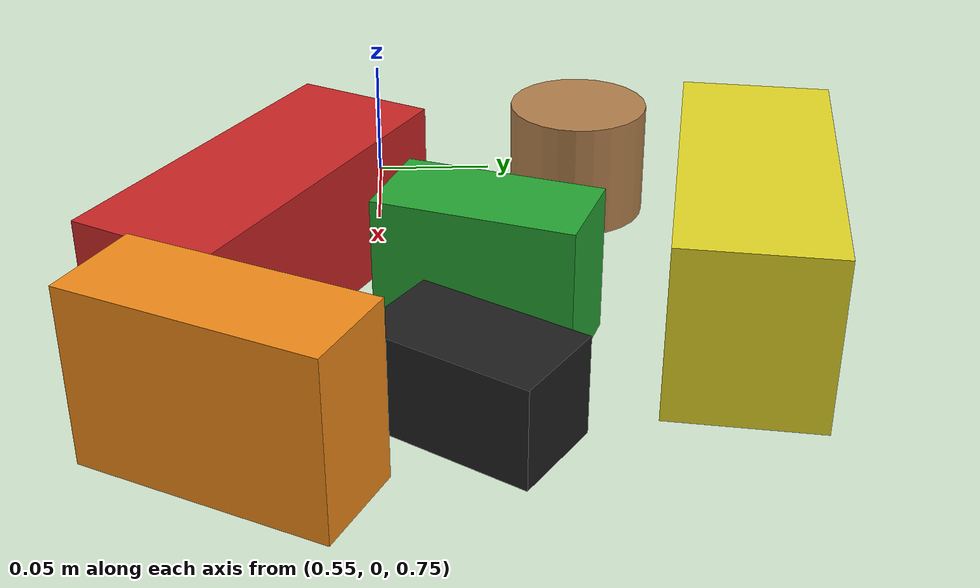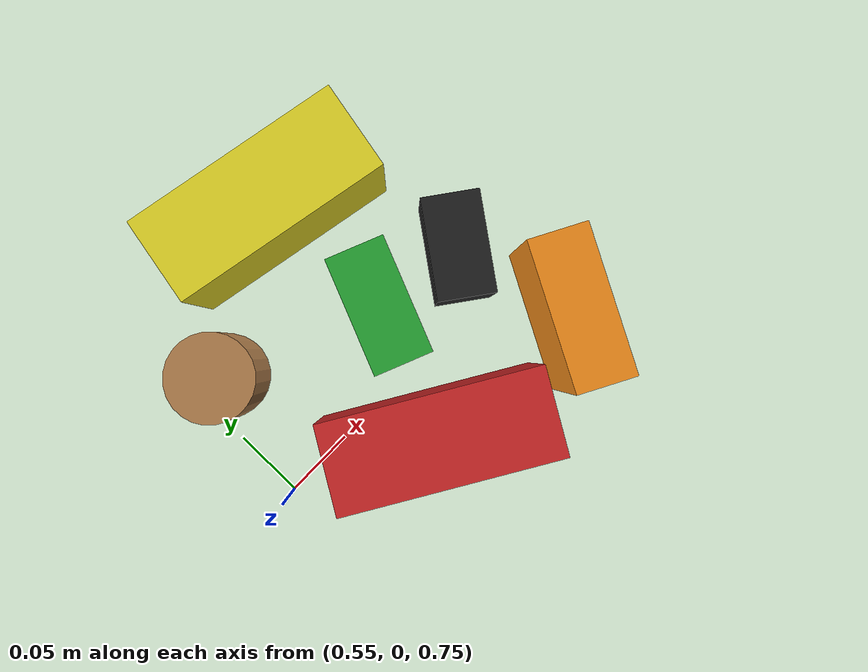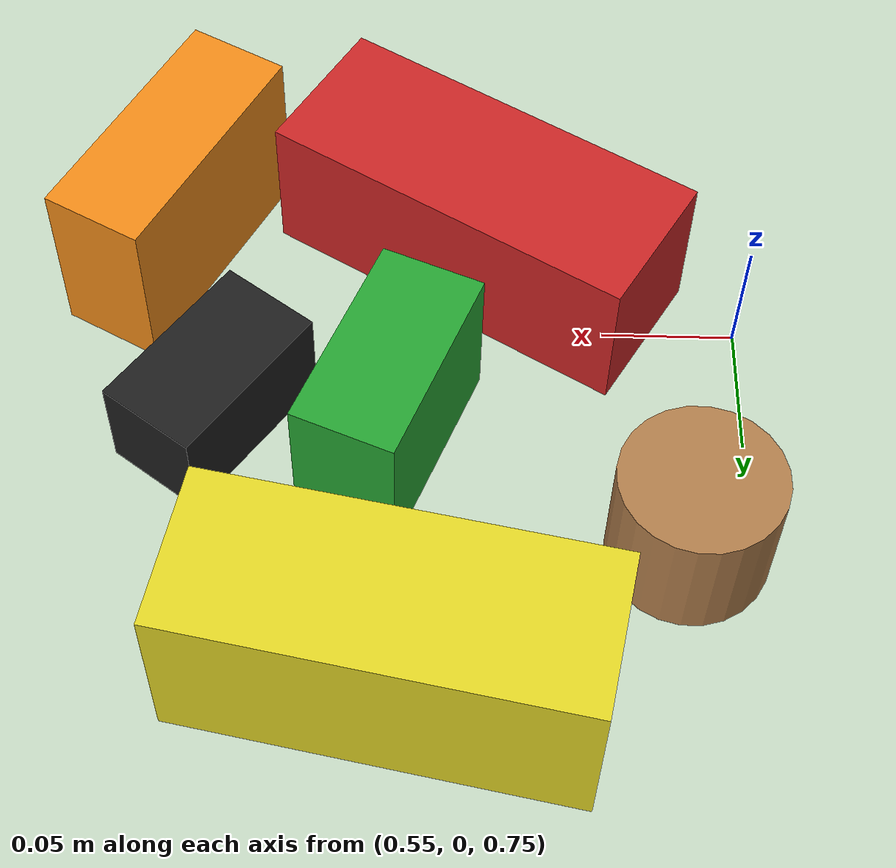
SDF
<sdf version="1.4">
 <world name="default">
  <light name="sun" type="directional">
   <pose>0 0 10 0 -0 0</pose>
   <diffuse>0.8 0.8 0.8 1</diffuse>
   <specular>0.2 0.2 0.2 1</specular>
   <attenuation>
    <range>1000</range>
    <constant>0.9</constant>
    <linear>0.01</linear>
    <quadratic>0.001</quadratic>
   </attenuation>
   <direction>-0.5 0.1 -0.9</direction>
  </light>
  <scene><shadows>0</shadows><ambient>0.4 0.4 0.4 1</ambient><background>0.7 0.7 0.7 1</background></scene>
  <model name="ground_plane">
   <static>1</static>
   <link name="link">
    <collision name="collision">
     <geometry><plane><normal>0 0 1</normal><size>100 100</size></plane></geometry>
     <surface><friction><ode><mu>100</mu><mu2>50</mu2></ode></friction></surface>
    </collision>
    <visual name="visual">
     <cast_shadows>0</cast_shadows>
     <geometry><plane><normal>0 0 1</normal><size>100 100</size></plane></geometry>
     <material>
      <script><uri>file://media/materials/scripts/gazebo.material</uri><name>Gazebo/Grey</name></script>
     </material>
    </visual>
    <velocity_decay><linear>0</linear><angular>0</angular></velocity_decay>
   </link>
  </model>
  <physics type="ode">
   <max_step_size>0.001</max_step_size>
   <real_time_factor>1</real_time_factor>
   <real_time_update_rate>1000</real_time_update_rate>
   <gravity>0 0 -9.8</gravity>
  </physics>
  <spherical_coordinates>
   <surface_model>EARTH_WGS84</surface_model>
   <latitude_deg>0</latitude_deg>
   <longitude_deg>0</longitude_deg>
   <elevation>0</elevation>
   <heading_deg>0</heading_deg>
  </spherical_coordinates>
  <model name="wood_cylinder_5x2cm">
   <link name="link">
    <pose>0 0 0.05 0 -0 0</pose>
    <inertial>
     <mass>0.001</mass>
     <inertia>
      <ixx>0.000101167</ixx>
      <ixy>0</ixy>
      <ixz>0</ixz>
      <iyy>6.1167e-05</iyy>
      <iyz>0</iyz>
      <izz>6.1167e-05</izz>
     </inertia>
    </inertial>
    <collision name="collision">
     <geometry><cylinder><radius>0.03</radius><length>0.05</length></cylinder></geometry>
     <surface><contact><ode><max_vel>0.1</max_vel><min_depth>0.001</min_depth></ode></contact></surface>
    </collision>
    <visual name="visual">
     <geometry><cylinder><radius>0.03</radius><length>0.05</length></cylinder></geometry>
     <material>
      <script><uri>file://media/materials/scripts/gazebo.material</uri><name>Gazebo/Wood</name></script>
     </material>
    </visual>
    <velocity_decay><linear>0</linear><angular>0</angular></velocity_decay>
   </link>
   <pose>0.571736 0.089544 0.714789 -0.004557 0.000387 3.01316</pose>
   <static>0</static>
  </model>
  <model name="rectangle_green">
   <link name="link">
    <pose>0 0 0.05 0 -0 0</pose>
    <inertial>
     <mass>0.001</mass>
     <inertia>
      <ixx>0.000101167</ixx>
      <ixy>0</ixy>
      <ixz>0</ixz>
      <iyy>6.1167e-05</iyy>
      <iyz>0</iyz>
      <izz>6.1167e-05</izz>
     </inertia>
    </inertial>
    <collision name="collision">
     <geometry><box><size>0.06 0.08 0.04</size></box></geometry>
     <surface><contact><ode><max_vel>0.1</max_vel><min_depth>0.001</min_depth></ode></contact></surface>
    </collision>
    <visual name="visual">
     <geometry><box><size>0.06 0.08 0.04</size></box></geometry>
     <material>
      <script><uri>file://media/materials/scripts/gazebo.material</uri><name>Gazebo/Green</name></script>
     </material>
    </visual>
    <velocity_decay><linear>0</linear><angular>0</angular></velocity_decay>
   </link>
   <pose>0.726768 0.02462 0.769386 0.722479 -1.56834 -1.11425</pose>
   <static>0</static>
  </model>
  <model name="rectangle_orange">
   <link name="link">
    <pose>0 0 0.05 0 -0 0</pose>
    <inertial>
     <mass>0.001</mass>
     <inertia>
      <ixx>0.000101167</ixx>
      <ixy>0</ixy>
      <ixz>0</ixz>
      <iyy>6.1167e-05</iyy>
      <iyz>0</iyz>
      <izz>6.1167e-05</izz>
     </inertia>
    </inertial>
    <collision name="collision">
     <geometry><box><size>0.07 0.1 0.04</size></box></geometry>
     <surface><contact><ode><max_vel>0.1</max_vel><min_depth>0.001</min_depth></ode></contact></surface>
    </collision>
    <visual name="visual">
     <geometry><box><size>0.07 0.1 0.04</size></box></geometry>
     <material>
      <script><uri>file://media/materials/scripts/gazebo.material</uri><name>Gazebo/Orange</name></script>
     </material>
    </visual>
    <velocity_decay><linear>0</linear><angular>0</angular></velocity_decay>
   </link>
   <pose>0.810688 -0.071013 0.774852 2.63935 -1.56787 -3.13254</pose>
   <static>0</static>
  </model>
  <model name="rectangle_black">
   <link name="link">
    <pose>0 0 0.05 0 -0 0</pose>
    <inertial>
     <mass>0.001</mass>
     <inertia>
      <ixx>0.000101167</ixx>
      <ixy>0</ixy>
      <ixz>0</ixz>
      <iyy>6.1167e-05</iyy>
      <iyz>0</iyz>
      <izz>6.1167e-05</izz>
     </inertia>
    </inertial>
    <collision name="collision">
     <geometry><box><size>0.04 0.04 0.07</size></box></geometry>
     <surface><contact><ode><max_vel>0.1</max_vel><min_depth>0.001</min_depth></ode></contact></surface>
    </collision>
    <visual name="visual">
     <geometry><box><size>0.04 0.04 0.07</size></box></geometry>
     <material>
      <script><uri>file://media/materials/scripts/gazebo.material</uri><name>Gazebo/Black</name></script>
     </material>
    </visual>
    <velocity_decay><linear>0</linear><angular>0</angular></velocity_decay>
   </link>
   <pose>0.775767 0.075606 0.759981 -0.152297 -1.57065 1.09155</pose>
   <static>0</static>
  </model>
  <model name="wood_rectangle">
   <link name="link">
    <pose>0 0 0.05 0 -0 0</pose>
    <inertial>
     <mass>0.01</mass>
     <inertia>
      <ixx>0.000101167</ixx>
      <ixy>0</ixy>
      <ixz>0</ixz>
      <iyy>6.1167e-05</iyy>
      <iyz>0</iyz>
      <izz>6.1167e-05</izz>
     </inertia>
    </inertial>
    <collision name="collision">
     <geometry><box><size>0.06 0.15 0.06</size></box></geometry>
     <surface><contact><ode><max_vel>0.1</max_vel><min_depth>0.001</min_depth></ode></contact></surface>
    </collision>
    <visual name="visual">
     <geometry><box><size>0.06 0.15 0.06</size></box></geometry>
     <material>
      <script><uri>file://media/materials/scripts/gazebo.material</uri><name>Gazebo/Red</name></script>
     </material>
    </visual>
    <velocity_decay><linear>0</linear><angular>0</angular></velocity_decay>
   </link>
   <pose>0.647238 -0.043529 0.719986 -0.000151 -9e-05 -2.11396</pose>
   <static>0</static>
  </model>
  <model name="wood_cube_10cm">
   <link name="link">
    <pose>0 0 0.05 0 -0 0</pose>
    <inertial>
     <mass>0.01</mass>
     <inertia>
      <ixx>0.000101167</ixx>
      <ixy>0</ixy>
      <ixz>0</ixz>
      <iyy>6.1167e-05</iyy>
      <iyz>0</iyz>
      <izz>6.1167e-05</izz>
     </inertia>
    </inertial>
    <collision name="collision">
     <geometry><box><size>0.06 0.15 0.07</size></box></geometry>
     <surface><contact><ode><max_vel>0.1</max_vel><min_depth>0.001</min_depth></ode></contact></surface>
    </collision>
    <visual name="visual">
     <geometry><box><size>0.06 0.15 0.07</size></box></geometry>
     <material>
      <script><uri>file://media/materials/scripts/gazebo.material</uri><name>Gazebo/Yellow</name></script>
     </material>
    </visual>
    <velocity_decay><linear>0</linear><angular>0</angular></velocity_decay>
   </link>
   <pose>0.676791 0.145552 0.724999 4e-06 1.8e-05 -1.76557</pose>
   <static>0</static>
  </model>
 </world>
</sdf>
